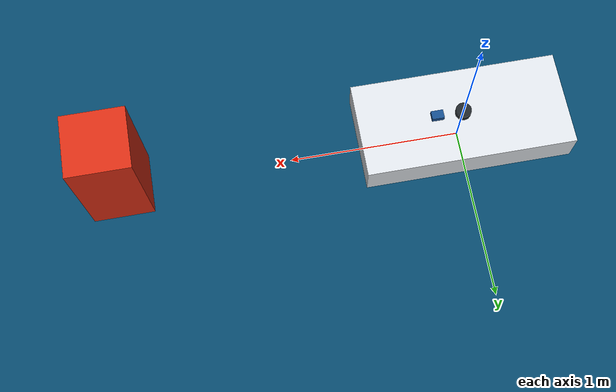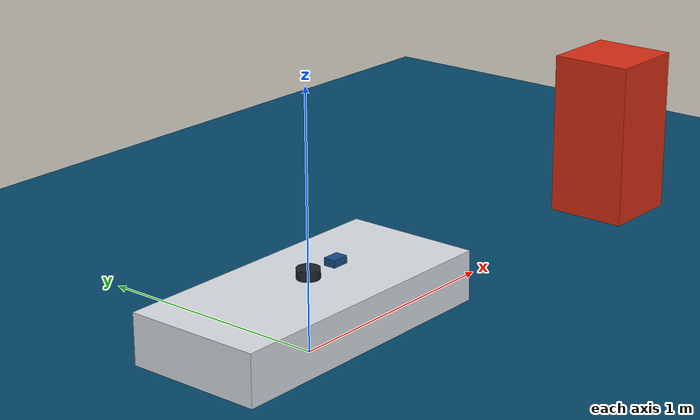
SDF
<?xml version="1.0"?>
<sdf version="1.8">
  <world name="zero_sensor_smoke">
    <plugin filename="ignition-gazebo-physics-system" name="ignition::gazebo::systems::Physics" />
    <plugin filename="ignition-gazebo-user-commands-system" name="ignition::gazebo::systems::UserCommands" />
    <plugin filename="ignition-gazebo-scene-broadcaster-system" name="ignition::gazebo::systems::SceneBroadcaster" />
    <plugin filename="ignition-gazebo-sensors-system" name="ignition::gazebo::systems::Sensors">
      <render_engine>ogre2</render_engine>
    </plugin>
    <plugin filename="ignition-gazebo-imu-system" name="ignition::gazebo::systems::Imu" />

    <gravity>0 0 -9.81</gravity>
    <magnetic_field>6.0e-6 2.3e-5 -4.2e-5</magnetic_field>
    <atmosphere type="adiabatic" />

    <light name="sun" type="directional">
      <cast_shadows>true</cast_shadows>
      <pose>0 0 10 0 0 0</pose>
      <diffuse>0.8 0.8 0.8 1</diffuse>
      <specular>0.2 0.2 0.2 1</specular>
      <direction>-0.5 0.1 -0.9</direction>
    </light>

    <model name="water_plane_placeholder">
      <!-- Minimal water plane for sensor smoke checks, not a hydrodynamics model. -->
      <!-- 传感器 smoke 检查使用的最小水面，不是水动力模型。 -->
      <static>true</static>
      <link name="water_plane_link">
        <collision name="water_plane_collision">
          <geometry>
            <plane>
              <normal>0 0 1</normal>
              <size>40 40</size>
            </plane>
          </geometry>
        </collision>
        <visual name="water_plane_visual">
          <geometry>
            <plane>
              <normal>0 0 1</normal>
              <size>40 40</size>
            </plane>
          </geometry>
          <material>
            <ambient>0.02 0.18 0.28 1</ambient>
            <diffuse>0.02 0.28 0.42 1</diffuse>
            <specular>0.02 0.04 0.06 1</specular>
          </material>
        </visual>
      </link>
    </model>

    <model name="scan_target_box">
      <static>true</static>
      <pose>2.0 0 0.35 0 0 0</pose>
      <link name="scan_target_link">
        <collision name="scan_target_collision">
          <geometry>
            <box>
              <size>0.35 0.35 0.70</size>
            </box>
          </geometry>
        </collision>
        <visual name="scan_target_visual">
          <geometry>
            <box>
              <size>0.35 0.35 0.70</size>
            </box>
          </geometry>
          <material>
            <ambient>0.85 0.18 0.08 1</ambient>
            <diffuse>0.85 0.18 0.08 1</diffuse>
          </material>
        </visual>
      </link>
    </model>

    <include>
      <!-- Spawn the packaged Zero USV model to exercise installed model:// lookup. -->
      <!-- 生成本包 Zero USV 模型，用于验证安装后的 model:// 查找。 -->
      <uri>model://zero_usv</uri>
      <pose>0 0 0.18 0 0 0</pose>
    </include>
  </world>
</sdf>

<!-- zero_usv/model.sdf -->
<sdf version="1.8">
  <model name="zero_usv">
    <pose>0 0 0 0 0 0</pose>
    <static>false</static>

    <link name="zero_base_link">
      <inertial>
        <mass>12.0</mass>
        <inertia>
          <ixx>0.82</ixx>
          <ixy>0</ixy>
          <ixz>0</ixz>
          <iyy>1.46</iyy>
          <iyz>0</iyz>
          <izz>2.10</izz>
        </inertia>
      </inertial>
      <collision name="hull_collision">
        <geometry>
          <box>
            <size>1.20 0.55 0.20</size>
          </box>
        </geometry>
      </collision>
      <visual name="hull_visual">
        <geometry>
          <box>
            <size>1.20 0.55 0.20</size>
          </box>
        </geometry>
        <material>
          <ambient>0.86 0.88 0.90 1</ambient>
          <diffuse>0.86 0.88 0.90 1</diffuse>
        </material>
      </visual>
    </link>

    <link name="lidar_link">
      <pose relative_to="zero_base_link">-0.00015 -0.00040397 0.1277 0 0 0</pose>
      <inertial>
        <mass>0.08</mass>
        <inertia>
          <ixx>0.00006</ixx>
          <ixy>0</ixy>
          <ixz>0</ixz>
          <iyy>0.00006</iyy>
          <iyz>0</iyz>
          <izz>0.00008</izz>
        </inertia>
      </inertial>
      <collision name="lidar_collision">
        <geometry>
          <cylinder>
            <radius>0.045</radius>
            <length>0.04</length>
          </cylinder>
        </geometry>
      </collision>
      <visual name="lidar_visual">
        <geometry>
          <cylinder>
            <radius>0.045</radius>
            <length>0.04</length>
          </cylinder>
        </geometry>
        <material>
          <ambient>0.12 0.14 0.16 1</ambient>
          <diffuse>0.12 0.14 0.16 1</diffuse>
        </material>
      </visual>
      <sensor name="zero_lidar" type="gpu_lidar">
        <topic>/scan</topic>
        <gz_frame_id>laser_frame</gz_frame_id>
        <!-- Approximate the real YDLIDAR X2: 360 deg, 0.10-8.0 m, 4-8 Hz, 3K samples/s. -->
        <!-- 近似真实 YDLIDAR X2：360 度、0.10-8.0 m、4-8 Hz、3K samples/s。 -->
        <update_rate>6</update_rate>
        <always_on>true</always_on>
        <visualize>true</visualize>
        <ray>
          <scan>
            <horizontal>
              <samples>500</samples>
              <resolution>1</resolution>
              <min_angle>-3.14159</min_angle>
              <max_angle>3.14159</max_angle>
            </horizontal>
          </scan>
          <range>
            <min>0.10</min>
            <max>8.0</max>
            <resolution>0.01</resolution>
          </range>
          <noise>
            <type>gaussian</type>
            <mean>0.0</mean>
            <stddev>0.01</stddev>
          </noise>
        </ray>
      </sensor>
    </link>

    <link name="imu_link">
      <pose relative_to="zero_base_link">0.15 0 0.13 0 0 0</pose>
      <inertial>
        <mass>0.05</mass>
        <inertia>
          <ixx>0.00002</ixx>
          <ixy>0</ixy>
          <ixz>0</ixz>
          <iyy>0.00002</iyy>
          <iyz>0</iyz>
          <izz>0.00002</izz>
        </inertia>
      </inertial>
      <collision name="imu_collision">
        <geometry>
          <box>
            <size>0.07 0.05 0.03</size>
          </box>
        </geometry>
      </collision>
      <visual name="imu_visual">
        <geometry>
          <box>
            <size>0.07 0.05 0.03</size>
          </box>
        </geometry>
        <material>
          <ambient>0.08 0.30 0.55 1</ambient>
          <diffuse>0.08 0.30 0.55 1</diffuse>
        </material>
      </visual>
      <sensor name="zero_imu" type="imu">
        <topic>/imu</topic>
        <gz_frame_id>imu_link</gz_frame_id>
        <update_rate>100</update_rate>
        <always_on>true</always_on>
      </sensor>
    </link>

    <link name="left_virtual_wheel_link">
      <!-- Virtual wheel links exist only to drive Gazebo DiffDrive for the USV hull. -->
      <!-- 虚拟轮 link 仅用于驱动 USV 船体的 Gazebo DiffDrive。 -->
      <pose relative_to="zero_base_link">0 0.2035 -0.13 0 0 0</pose>
      <inertial>
        <mass>0.02</mass>
        <inertia>
          <ixx>0.000013166666667</ixx>
          <ixy>0</ixy>
          <ixz>0</ixz>
          <iyy>0.000025</iyy>
          <iyz>0</iyz>
          <izz>0.000013166666667</izz>
        </inertia>
      </inertial>
      <collision name="left_virtual_wheel_collision">
        <pose>0 0 0 1.57079632679 0 0</pose>
        <geometry>
          <cylinder>
            <radius>0.05</radius>
            <length>0.02</length>
          </cylinder>
        </geometry>
      </collision>
    </link>

    <link name="right_virtual_wheel_link">
      <pose relative_to="zero_base_link">0 -0.2035 -0.13 0 0 0</pose>
      <inertial>
        <mass>0.02</mass>
        <inertia>
          <ixx>0.000013166666667</ixx>
          <ixy>0</ixy>
          <ixz>0</ixz>
          <iyy>0.000025</iyy>
          <iyz>0</iyz>
          <izz>0.000013166666667</izz>
        </inertia>
      </inertial>
      <collision name="right_virtual_wheel_collision">
        <pose>0 0 0 1.57079632679 0 0</pose>
        <geometry>
          <cylinder>
            <radius>0.05</radius>
            <length>0.02</length>
          </cylinder>
        </geometry>
      </collision>
    </link>

    <joint name="left_virtual_wheel_joint" type="revolute">
      <parent>zero_base_link</parent>
      <child>left_virtual_wheel_link</child>
      <axis>
        <xyz>0 1 0</xyz>
      </axis>
    </joint>

    <joint name="right_virtual_wheel_joint" type="revolute">
      <parent>zero_base_link</parent>
      <child>right_virtual_wheel_link</child>
      <axis>
        <xyz>0 1 0</xyz>
      </axis>
    </joint>

    <joint name="zero_lidar_fixed_joint" type="fixed">
      <parent>zero_base_link</parent>
      <child>lidar_link</child>
    </joint>
    <frame name="laser_frame" attached_to="lidar_link">
      <pose>0 0 0 0 0 0</pose>
    </frame>
    <joint name="zero_imu_fixed_joint" type="fixed">
      <parent>zero_base_link</parent>
      <child>imu_link</child>
    </joint>

    <plugin filename="libignition-gazebo-diff-drive-system.so" name="ignition::gazebo::systems::DiffDrive">
      <!-- Topic, odometry, and limits mirror the ROS bridge and adapter contracts. -->
      <!-- topic、里程计和限幅与 ROS 桥接及适配器契约保持一致。 -->
      <left_joint>left_virtual_wheel_joint</left_joint>
      <right_joint>right_virtual_wheel_joint</right_joint>
      <wheel_separation>0.407</wheel_separation>
      <wheel_radius>0.05</wheel_radius>
      <odom_publish_frequency>50</odom_publish_frequency>
      <topic>/model/zero_usv/cmd_vel</topic>
      <odom_topic>/model/zero_usv/odometry</odom_topic>
      <tf_topic>/model/zero_usv/diff_drive_tf_unbridged</tf_topic>
      <frame_id>odom</frame_id>
      <child_frame_id>zero_base_link</child_frame_id>
      <min_linear_velocity>-1.0</min_linear_velocity>
      <max_linear_velocity>1.0</max_linear_velocity>
      <min_angular_velocity>-1.0</min_angular_velocity>
      <max_angular_velocity>1.0</max_angular_velocity>
      <min_linear_acceleration>-1.0</min_linear_acceleration>
      <max_linear_acceleration>1.0</max_linear_acceleration>
      <min_angular_acceleration>-1.0</min_angular_acceleration>
      <max_angular_acceleration>1.0</max_angular_acceleration>
    </plugin>
  </model>
</sdf>
